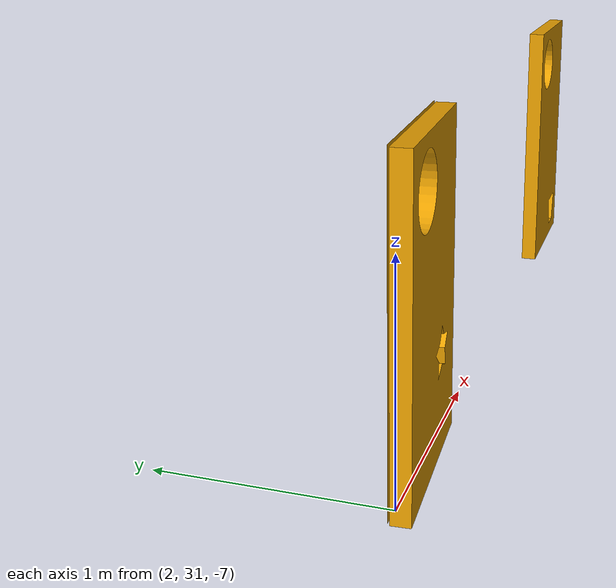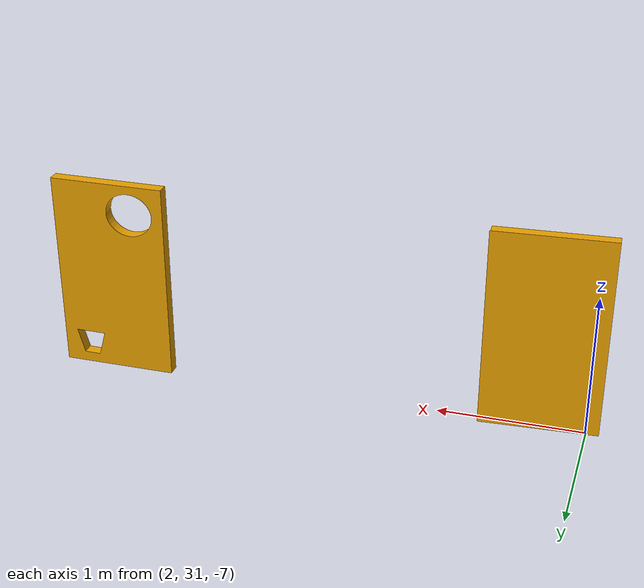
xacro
<?xml version="1.0"?>
<robot name="torpedos_1" xmlns:xacro="http://www.ros.org/wiki/xacro">

<!-- Introducir meshes -->
<xacro:property name="visual_mesh_file" value="file://$(find uv_worlds)/models/props//finaltorpedos.dae" />

<link name="torpedos1_base">
    <visual>
        <origin xyz="0 2 -7" rpy="0.0 0.0 0.0"/>
        <geometry>
            <mesh filename="${visual_mesh_file}" scale="1 1 1" />
        </geometry>
    </visual>

        <!-- Se deben cambiar los parametros reales-->
    <collision>
      <origin xyz="0 2 -7" rpy="0.0 0.0 0.0"/>
      <geometry>
        <mesh filename="${visual_mesh_file}" scale="1 1 1" />
      </geometry>
    </collision>

    <inertial>
      <origin xyz="0 2 -7" rpy="0.0 0.0 0.0"/>
      <mass value="1"/>
      <inertia
        ixx="1.0" ixy="0.0" ixz="0.0"
        iyy="1.0" iyz="0.0"
        izz="1.0"/>
    </inertial>
</link>
<gazebo reference="torpedos1_base">
  <selfCollide>0</selfCollide>
  <turnGravityOff>1</turnGravityOff>
</gazebo>

</robot>
